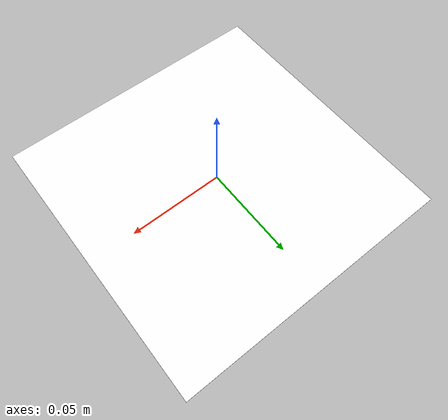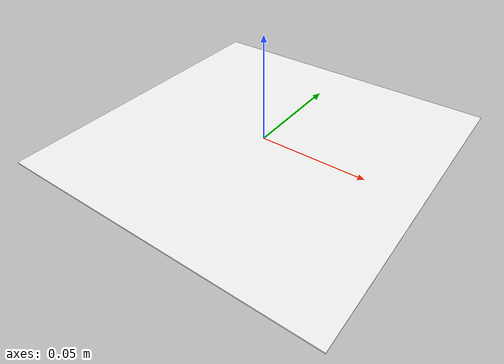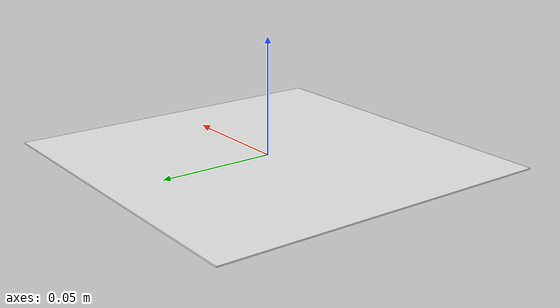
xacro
<?xml version="1.0" encoding="utf-8"?>
<robot
  name="sentry1">
  <link
    name="sentry1">
    <inertial>
      <origin
        xyz="0.050669 -0.050669 0.67531"
        rpy="0 0 0" />
      <mass
        value="1.1807" />
      <inertia
        ixx="0.52915"
        ixy="-0.0019526"
        ixz="0.03191"
        iyy="0.52915"
        iyz="0.03191"
        izz="0.027533" />
    </inertial>
    <visual>
      <origin
        xyz="0 0 0"
        rpy="1.5707963267949 0 0" />
      <geometry>
        <mesh
          filename="package://small_car/meshes/base.STL" />
      </geometry>
      <material
        name="">
        <color
          rgba="1 1 1 1" />
      </material>
    </visual>
    <collision>
      <origin
        xyz="0 0 0"
        rpy="1.5707963267949 0 0" />
      <geometry>
        <mesh
          filename="package://small_car/meshes/base.STL" />
      </geometry>
    </collision>
  </link>
  <gazebo reference="sentry1">
    <sensor type="depth" name="camera1">
    <update_rate>100</update_rate>
    <camera name="back_camera1">
            <horizontal_fov>0.9</horizontal_fov>
            <image>
                <width>640</width>
                <height>480</height>
                <format>R8G8B8</format>
            </image>
            <clip>
                <near>0.1</near>
                <far>100</far>
            </clip>
            <noise>
              <type>gaussian</type>
              <mean>0.0</mean>
              <stddev>0.007</stddev>
            </noise>
        </camera>
             <plugin name="camera_controller" filename="libgazebo_ros_openni_kinect.so">
             <alwaysOn>true</alwaysOn>
                <updateRate>100</updateRate>
                <cameraName>back_camera1</cameraName>
                <frameName>sentry1</frameName>
                <imageTopicName>image_raw</imageTopicName>
                <cameraInfoTopicName>camera_info</cameraInfoTopicName>
                <hackBaseline>0.07</hackBaseline>
                <distortionK1>0.0</distortionK1>
                <distortionK2>0.0</distortionK2>
                <distortionK3>0.0</distortionK3>
                <distortionT1>0.0</distortionT1>
                <distortionT2>0.0</distortionT2>
            </plugin>
    </sensor>
  </gazebo>
</robot>
